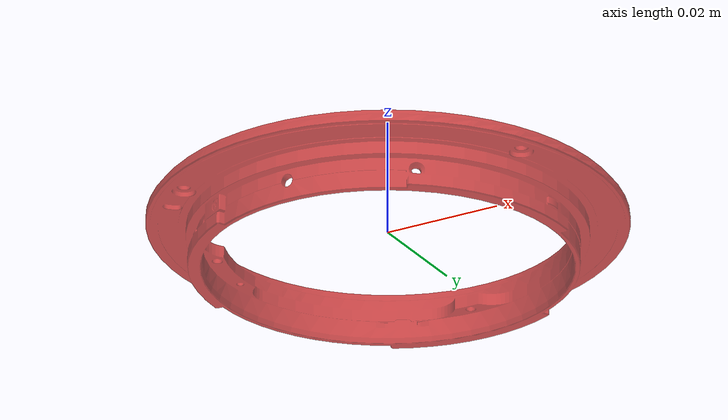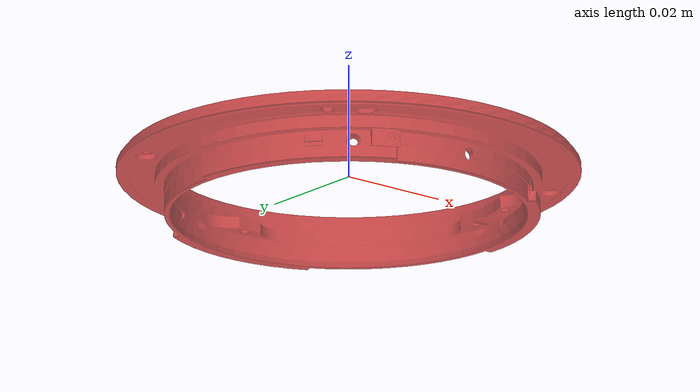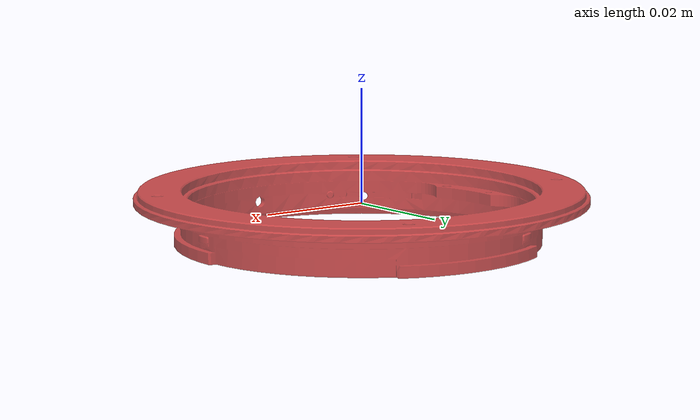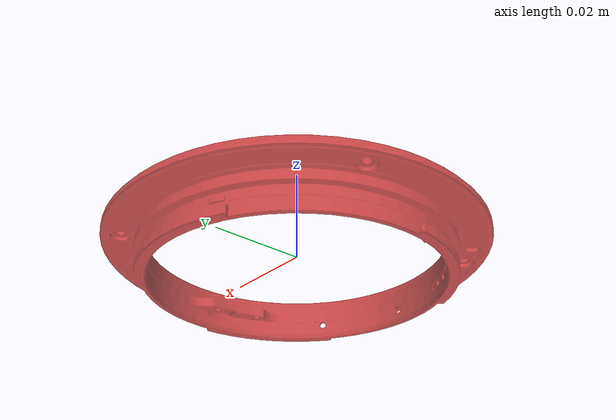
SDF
<?xml version='1.0'?>
<sdf version='1.6'>
  <model name="lens_ring">
    <static>true</static>
    <link name="ring">
      <inertial>
        <pose frame=''>-0.000035 0.000019 -0.000350"</pose>
        <mass>1</mass>
        <inertia>
          <ixx>0.997667</ixx>
          <ixy>0.068268</ixy>
          <ixz>-0.000480</ixz>
          <iyy>0.997667</iyy>
          <iyz>-0.000209</iyz>
          <izz>1.0</izz>
        </inertia>
      </inertial>
      <visual name='visual'>
        <transparency> 0.2 </transparency>
        <pose frame=''>0 0 0 0 0 0</pose>
        <geometry>
          <mesh>
            <uri>model://lens_ring/ring.dae</uri>
            <scale>1.01 1.01 1.01</scale>
          </mesh>
        </geometry>
        <material>
          <script>
            <uri>model://media/materials/scripts/gazebo.material</uri>
            <name>Gazebo/Red</name>
          </script>
        </material>
      </visual>
      <collision name="collision">
        <pose frame=''>0 0 0 0 0 0</pose>
          <geometry>
            <mesh>
              <uri>model://lens_ring/ring.dae</uri>
              <scale>1.01 1.01 1.01</scale>
            </mesh>
          </geometry>
          <surface>
          <friction>
            <ode>
              <mu>1</mu>
              <mu2>1</mu2>
              <fdir1>0 0 0</fdir1>
              <slip1>0.1</slip1>
              <slip2>0.1</slip2>
            </ode>
            <torsional>
              <coefficient>1</coefficient>
              <patch_radius>0</patch_radius>
              <surface_radius>0</surface_radius>
              <use_patch_radius>1</use_patch_radius>
              <ode>
                <slip>0</slip>
              </ode>
            </torsional>
          </friction>
          <bounce>
            <restitution_coefficient>0</restitution_coefficient>
            <threshold>1e+06</threshold>
          </bounce>
          <contact>
            <collide_without_contact>0</collide_without_contact>
            <collide_without_contact_bitmask>1</collide_without_contact_bitmask>
            <collide_bitmask>1</collide_bitmask>
            <ode>
              <kp>2.5e+5</kp>
              <kd>1</kd>
              <max_vel>0.01</max_vel>
              <min_depth>0</min_depth>
            </ode>
          </contact>
        </surface>
      </collision>
    </link>
  </model>
</sdf>
